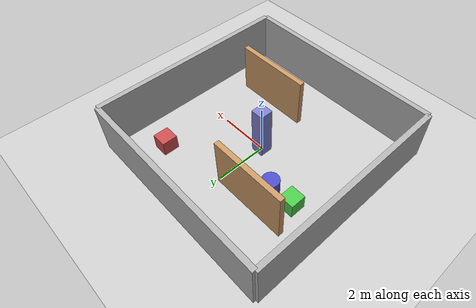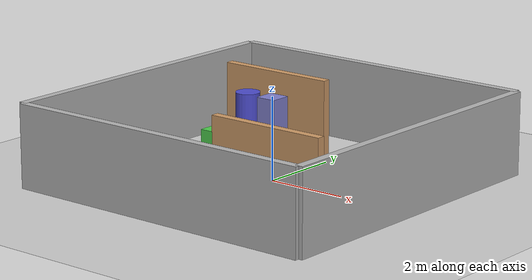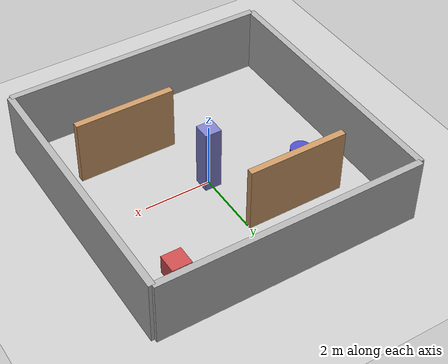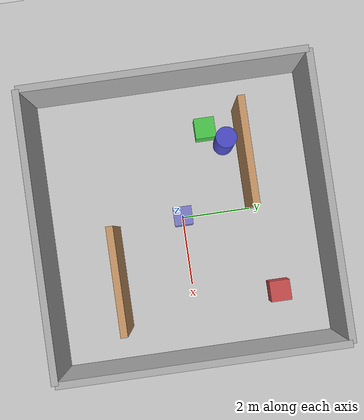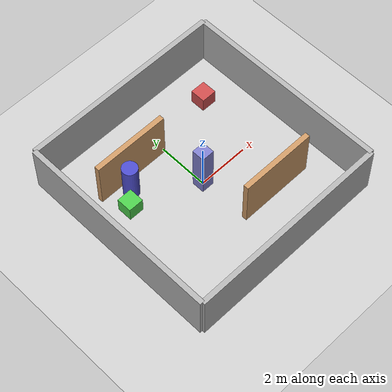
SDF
<?xml version="1.0"?>
<sdf version="1.6">
  <world name="test_room">

    <!-- Physics -->
    <physics type="ode">
      <max_step_size>0.001</max_step_size>
      <real_time_factor>1</real_time_factor>
      <real_time_update_rate>1000</real_time_update_rate>
    </physics>

    <!-- Lighting -->
    <include>
      <uri>model://sun</uri>
    </include>

    <!-- Ground Plane -->
    <include>
      <uri>model://ground_plane</uri>
    </include>

    <!-- Room walls (8m x 8m room) -->

    <!-- North Wall -->
    <model name="wall_north">
      <static>true</static>
      <link name="link">
        <collision name="collision">
          <geometry>
            <box>
              <size>8.0 0.2 2.0</size>
            </box>
          </geometry>
        </collision>
        <visual name="visual">
          <geometry>
            <box>
              <size>8.0 0.2 2.0</size>
            </box>
          </geometry>
          <material>
            <ambient>0.7 0.7 0.7 1</ambient>
            <diffuse>0.7 0.7 0.7 1</diffuse>
          </material>
        </visual>
      </link>
      <pose>0 4.0 1.0 0 0 0</pose>
    </model>

    <!-- South Wall -->
    <model name="wall_south">
      <static>true</static>
      <link name="link">
        <collision name="collision">
          <geometry>
            <box>
              <size>8.0 0.2 2.0</size>
            </box>
          </geometry>
        </collision>
        <visual name="visual">
          <geometry>
            <box>
              <size>8.0 0.2 2.0</size>
            </box>
          </geometry>
          <material>
            <ambient>0.7 0.7 0.7 1</ambient>
            <diffuse>0.7 0.7 0.7 1</diffuse>
          </material>
        </visual>
      </link>
      <pose>0 -4.0 1.0 0 0 0</pose>
    </model>

    <!-- East Wall -->
    <model name="wall_east">
      <static>true</static>
      <link name="link">
        <collision name="collision">
          <geometry>
            <box>
              <size>0.2 8.0 2.0</size>
            </box>
          </geometry>
        </collision>
        <visual name="visual">
          <geometry>
            <box>
              <size>0.2 8.0 2.0</size>
            </box>
          </geometry>
          <material>
            <ambient>0.7 0.7 0.7 1</ambient>
            <diffuse>0.7 0.7 0.7 1</diffuse>
          </material>
        </visual>
      </link>
      <pose>4.0 0 1.0 0 0 0</pose>
    </model>

    <!-- West Wall -->
    <model name="wall_west">
      <static>true</static>
      <link name="link">
        <collision name="collision">
          <geometry>
            <box>
              <size>0.2 8.0 2.0</size>
            </box>
          </geometry>
        </collision>
        <visual name="visual">
          <geometry>
            <box>
              <size>0.2 8.0 2.0</size>
            </box>
          </geometry>
          <material>
            <ambient>0.7 0.7 0.7 1</ambient>
            <diffuse>0.7 0.7 0.7 1</diffuse>
          </material>
        </visual>
      </link>
      <pose>-4.0 0 1.0 0 0 0</pose>
    </model>

    <!-- Interior obstacles for exploration -->

    <!-- Central pillar -->
    <model name="pillar_center">
      <static>true</static>
      <link name="link">
        <collision name="collision">
          <geometry>
            <box>
              <size>0.5 0.5 2.0</size>
            </box>
          </geometry>
        </collision>
        <visual name="visual">
          <geometry>
            <box>
              <size>0.5 0.5 2.0</size>
            </box>
          </geometry>
          <material>
            <ambient>0.5 0.5 0.8 1</ambient>
            <diffuse>0.5 0.5 0.8 1</diffuse>
          </material>
        </visual>
      </link>
      <pose>0 0 1.0 0 0 0</pose>
    </model>

    <!-- Room divider 1 (partial wall) -->
    <model name="divider_1">
      <static>true</static>
      <link name="link">
        <collision name="collision">
          <geometry>
            <box>
              <size>3.0 0.2 2.0</size>
            </box>
          </geometry>
        </collision>
        <visual name="visual">
          <geometry>
            <box>
              <size>3.0 0.2 2.0</size>
            </box>
          </geometry>
          <material>
            <ambient>0.8 0.6 0.4 1</ambient>
            <diffuse>0.8 0.6 0.4 1</diffuse>
          </material>
        </visual>
      </link>
      <pose>-1.5 2.0 1.0 0 0 0</pose>
    </model>

    <!-- Room divider 2 (partial wall) -->
    <model name="divider_2">
      <static>true</static>
      <link name="link">
        <collision name="collision">
          <geometry>
            <box>
              <size>3.0 0.2 2.0</size>
            </box>
          </geometry>
        </collision>
        <visual name="visual">
          <geometry>
            <box>
              <size>3.0 0.2 2.0</size>
            </box>
          </geometry>
          <material>
            <ambient>0.8 0.6 0.4 1</ambient>
            <diffuse>0.8 0.6 0.4 1</diffuse>
          </material>
        </visual>
      </link>
      <pose>1.5 -2.0 1.0 0 0 0</pose>
    </model>

    <!-- Small box obstacle 1 -->
    <model name="box_1">
      <static>true</static>
      <link name="link">
        <collision name="collision">
          <geometry>
            <box>
              <size>0.6 0.6 0.6</size>
            </box>
          </geometry>
        </collision>
        <visual name="visual">
          <geometry>
            <box>
              <size>0.6 0.6 0.6</size>
            </box>
          </geometry>
          <material>
            <ambient>0.8 0.3 0.3 1</ambient>
            <diffuse>0.8 0.3 0.3 1</diffuse>
          </material>
        </visual>
      </link>
      <pose>2.5 2.5 0.3 0 0 0</pose>
    </model>

    <!-- Small box obstacle 2 - moved away from robot spawn point -->
    <model name="box_2">
      <static>true</static>
      <link name="link">
        <collision name="collision">
          <geometry>
            <box>
              <size>0.6 0.6 0.6</size>
            </box>
          </geometry>
        </collision>
        <visual name="visual">
          <geometry>
            <box>
              <size>0.6 0.6 0.6</size>
            </box>
          </geometry>
          <material>
            <ambient>0.3 0.8 0.3 1</ambient>
            <diffuse>0.3 0.8 0.3 1</diffuse>
          </material>
        </visual>
      </link>
      <pose>-2.5 1.0 0.3 0 0 0</pose>
    </model>

    <!-- Cylinder obstacle -->
    <model name="cylinder_1">
      <static>true</static>
      <link name="link">
        <collision name="collision">
          <geometry>
            <cylinder>
              <radius>0.3</radius>
              <length>1.5</length>
            </cylinder>
          </geometry>
        </collision>
        <visual name="visual">
          <geometry>
            <cylinder>
              <radius>0.3</radius>
              <length>1.5</length>
            </cylinder>
          </geometry>
          <material>
            <ambient>0.3 0.3 0.8 1</ambient>
            <diffuse>0.3 0.3 0.8 1</diffuse>
          </material>
        </visual>
      </link>
      <pose>-2.0 1.5 0.75 0 0 0</pose>
    </model>

    <!-- GUI settings -->
    <gui fullscreen='0'>
      <camera name='user_camera'>
        <pose>-8 -8 12 0 0.8 0.785</pose>
        <view_controller>orbit</view_controller>
      </camera>
    </gui>

  </world>
</sdf>
